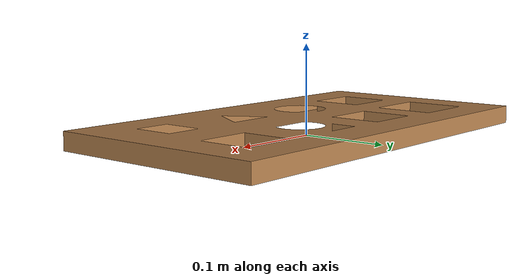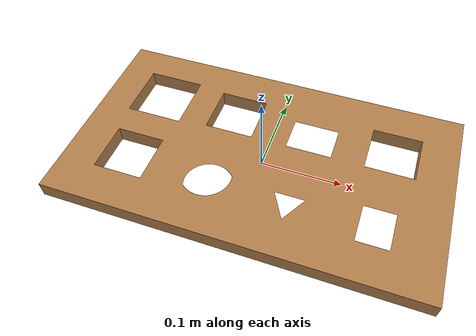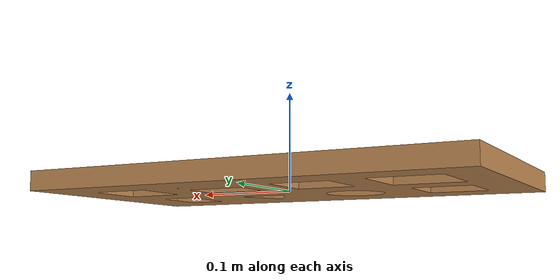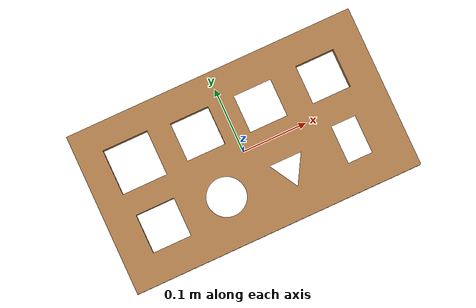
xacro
<?xml version="1.0"?>
<robot name="case">

<link name="base_link">
  <collision>
    <origin xyz="0 0 0" rpy="0 0 -3.14"/>
    <geometry>
        <mesh filename="case.dae"/>
    </geometry>
  </collision>

  <visual>
    <origin xyz="0 0 0" rpy="0 0 -3.14"/>
    <geometry>
        <mesh filename="case.dae"/>
    </geometry>
  </visual>

  <inertial>
    <origin xyz="0 0 0" rpy="0 0 -3.14" />
    <mass value="0.1" />
    <inertia
      ixx="0.05" ixy="0.0"  ixz="0.0"
      iyy="0.05" iyz="0.0"
      izz="0.05" />
  </inertial>
  </link>

<gazebo reference="base_link">
  <material>Gazebo/Wood</material>
    <mu1>5</mu1>
    <mu2>5</mu2>
</gazebo>

</robot>
